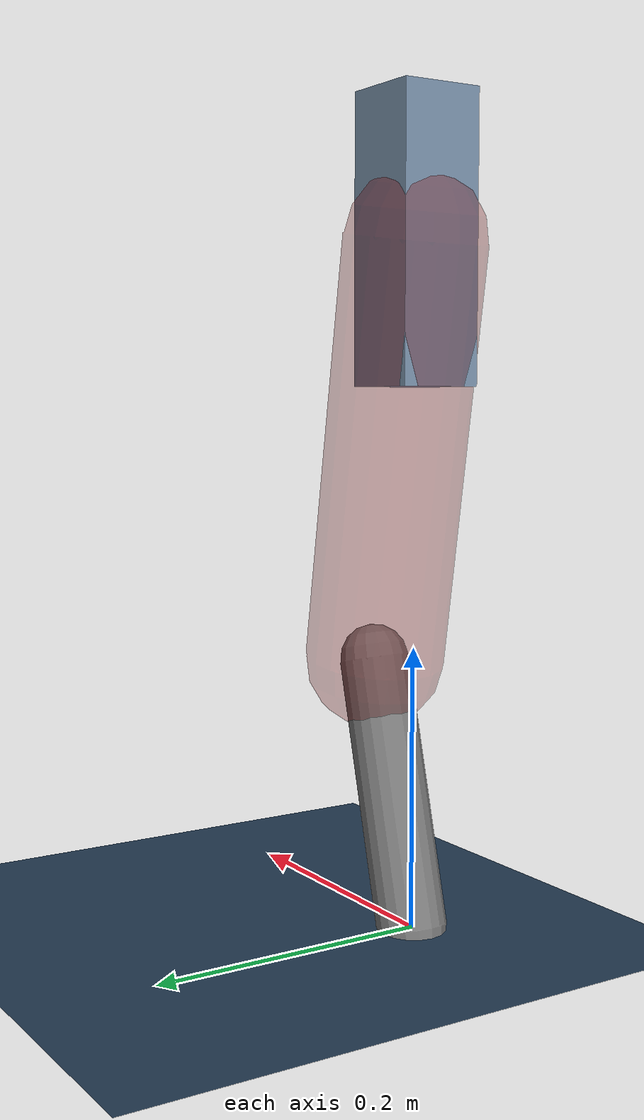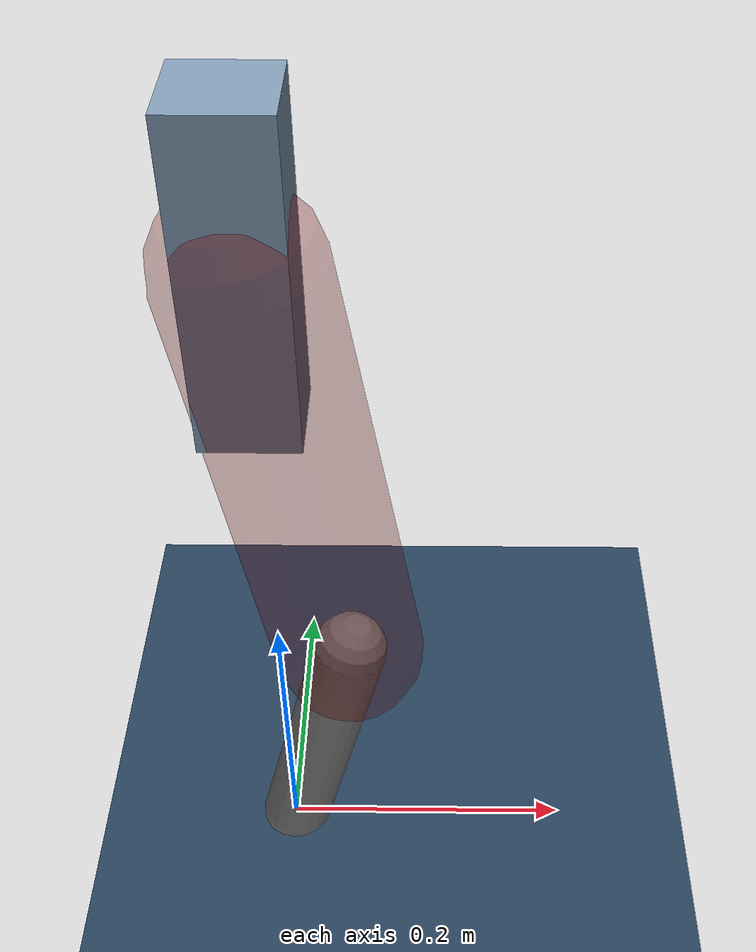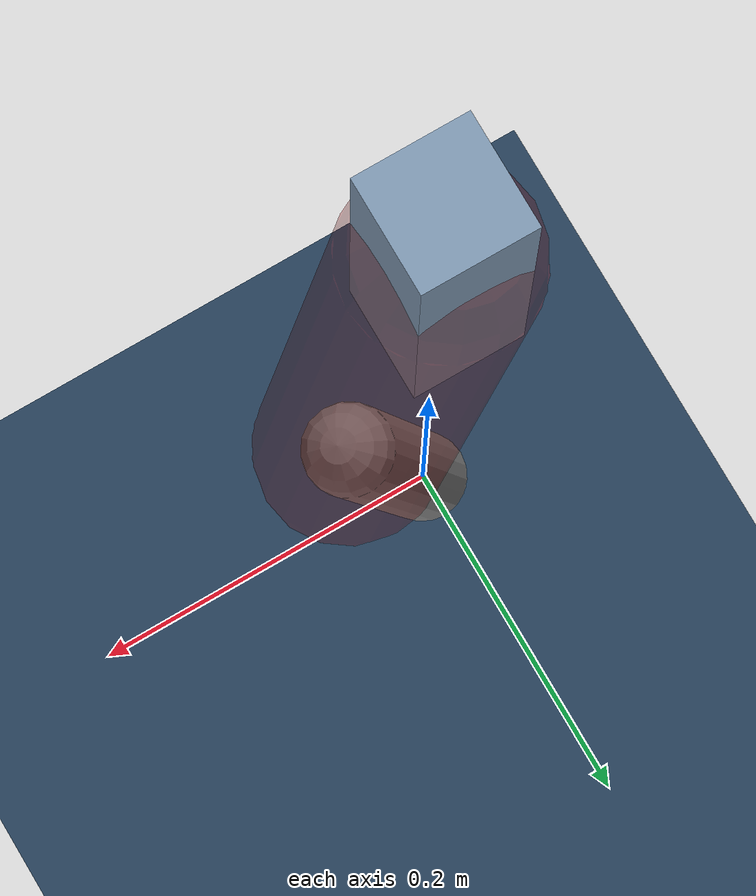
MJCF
<mujoco model="Hopper2D">
	<compiler inertiafromgeom="true" angle="radian" />
	<option timestep="0.001" integrator="implicit" cone="elliptic" solver="Newton" tolerance="1e-10" />

	<default>
		<geom contype="1" conaffinity="1" condim="3" friction="2 0.005 0.0001" solref="0.005 1" />
		<joint limited="true" damping="0.1" />
	</default>

	<asset>
		<texture name="skybox" type="skybox" builtin="gradient" rgb1=".4 .6 .8" rgb2="0 0 0" width="800" height="800" />
		<texture name="grid" type="2d" builtin="checker" rgb1=".1 .2 .3" rgb2=".2 .3 .4" width="300" height="300" mark="edge" markrgb=".2 .3 .4" />
		<material name="ground" texture="grid" texrepeat="1 1" texuniform="true" reflectance="0.1" />
		<material name="leg" rgba="0.5 0.6 0.7 1" />
	</asset>

	<worldbody>

		<geom name="floor" type="plane" size="5 5 0.25" material="ground" />

		<light directional="false" diffuse="0.8 0.8 0.8" specular="0.3 0.3 0.3" pos="0 0 2" dir="0 0 -1" />
		<light mode="targetbodycom" target="base" directional="false" diffuse="0.8 0.8 0.8" specular="0.3 0.3 0.3" pos="0 0 2" dir="0 0 -1" />

		<camera name="fixed" pos="0 -2 1" xyaxes="1 0 0 0 0 1" />
		<camera name="tracking" mode="trackcom" pos="0 -3 1" />

		<body name="root" pos="0 0 0.4818350544830545">
			<joint name="slide_x" type="slide" axis="1 0 0" range="-100 100" />
			<joint name="slide_z" type="slide" axis="0 0 1" range="0 10" />

			<body name="base" pos="0 0 0">
				<geom name="torso" type="box" size="0.03 0.03 0.1" mass="2.3600000000000003" material="leg" />

				<body name="link1" pos="0 0 0" euler="0 1.4095705301734365 0">
					<joint type="hinge" axis="0 -1 0" pos="0 0 0" name="hinge1" limited="true" range="-3.14 3.14" stiffness="0" damping="0.1" />
					<geom name="thigh" type="capsule" fromto="0 0 0 0.29961295832056317 0 0" size="0.05" rgba="0.5 0 0 0.3" mass="0.9876549874655206" />

					<body name="link2" pos="0.29961295832056317 0 0" euler="0 0.41412534217582436 0">
						<joint type="hinge" axis="0 -1 0" pos="0 0 0" name="hinge2" limited="true" range="-3.14 3.14" stiffness="0" damping="0.1" />
						<geom name="shank" type="capsule" fromto="0 0 0 0.19222209616249133 0 0" size="0.025" mass="0.3942998865462422" />

					</body>
				</body>
			</body>
		</body>
	</worldbody>

	<actuator>
		<motor name="torque1" joint="hinge1" ctrlrange="-49.97907912436046 49.97907912436046" ctrllimited="true" gear="1" />
		<motor name="torque2" joint="hinge2" ctrlrange="-118.41722747781306 118.41722747781306" ctrllimited="true" gear="1" />
	</actuator>
</mujoco>
